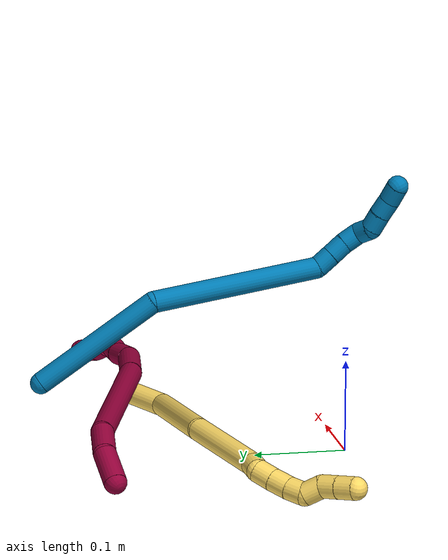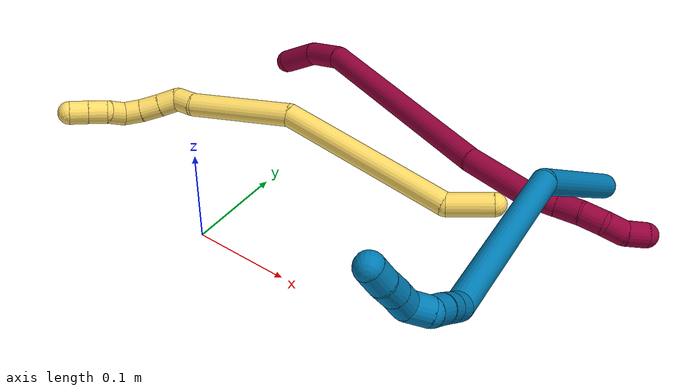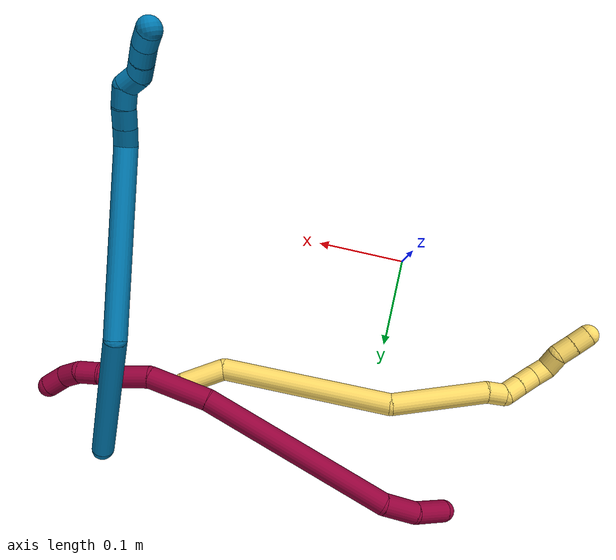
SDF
<sdf version="1.7">
 <world name="default">
  <model name="5">
   <static>0</static>
   <link name="5">
    <collision name="collision-cylinder-e_1_1_4">
     <pose>-0.010217 -0.020961 0.008322 1.19285 -0.425385 -0.291155</pose>
     <geometry><cylinder><radius>0.0125</radius><length>0.049518</length></cylinder></geometry>
     <surface>
      <friction><ode><mu>1.16</mu><mu2>1.16</mu2><slip1>0</slip1><slip2>0</slip2></ode></friction>
      <contact><ode><kp>1e+06</kp><kd>1</kd><max_vel>0</max_vel><min_depth>0.001</min_depth></ode></contact>
     </surface>
    </collision>
    <visual name="visual-cylinder-e_1_1_4">
     <pose>-0.010217 -0.020961 0.008322 1.19285 -0.425385 -0.291155</pose>
     <geometry><cylinder><radius>0.0125</radius><length>0.049518</length></cylinder></geometry>
     <material><ambient>1 0.858824 0.4 1</ambient></material>
    </visual>
    <collision name="collision-cylinder-e_2_4_5">
     <pose>-0.092557 -0.083116 0.068204 0.674107 -0.829733 -0.306259</pose>
     <geometry><cylinder><radius>0.0125</radius><length>0.19552</length></cylinder></geometry>
     <surface>
      <friction><ode><mu>1.16</mu><mu2>1.16</mu2><slip1>0</slip1><slip2>0</slip2></ode></friction>
      <contact><ode><kp>1e+06</kp><kd>1</kd><max_vel>0</max_vel><min_depth>0.001</min_depth></ode></contact>
     </surface>
    </collision>
    <visual name="visual-cylinder-e_2_4_5">
     <pose>-0.092557 -0.083116 0.068204 0.674107 -0.829733 -0.306259</pose>
     <geometry><cylinder><radius>0.0125</radius><length>0.19552</length></cylinder></geometry>
     <material><ambient>1 0.858824 0.4 1</ambient></material>
    </visual>
    <collision name="collision-cylinder-e_3_5_6">
     <pose>-0.197782 -0.164748 0.138047 1.14616 -0.640872 -0.421958</pose>
     <geometry><cylinder><radius>0.0125</radius><length>0.110731</length></cylinder></geometry>
     <surface>
      <friction><ode><mu>1.16</mu><mu2>1.16</mu2><slip1>0</slip1><slip2>0</slip2></ode></friction>
      <contact><ode><kp>1e+06</kp><kd>1</kd><max_vel>0</max_vel><min_depth>0.001</min_depth></ode></contact>
     </surface>
    </collision>
    <visual name="visual-cylinder-e_3_5_6">
     <pose>-0.197782 -0.164748 0.138047 1.14616 -0.640872 -0.421958</pose>
     <geometry><cylinder><radius>0.0125</radius><length>0.110731</length></cylinder></geometry>
     <material><ambient>1 0.858824 0.4 1</ambient></material>
    </visual>
    <collision name="collision-cylinder-e_4_6_7">
     <pose>-0.238949 -0.210646 0.160128 0.963169 -0.881219 -0.483235</pose>
     <geometry><cylinder><radius>0.0125</radius><length>0.020904</length></cylinder></geometry>
     <surface>
      <friction><ode><mu>1.16</mu><mu2>1.16</mu2><slip1>0</slip1><slip2>0</slip2></ode></friction>
      <contact><ode><kp>1e+06</kp><kd>1</kd><max_vel>0</max_vel><min_depth>0.001</min_depth></ode></contact>
     </surface>
    </collision>
    <visual name="visual-cylinder-e_4_6_7">
     <pose>-0.238949 -0.210646 0.160128 0.963169 -0.881219 -0.483235</pose>
     <geometry><cylinder><radius>0.0125</radius><length>0.020904</length></cylinder></geometry>
     <material><ambient>1 0.858824 0.4 1</ambient></material>
    </visual>
    <collision name="collision-cylinder-e_5_7_8">
     <pose>-0.250194 -0.226002 0.164605 1.50205 -0.3103 -0.289966</pose>
     <geometry><cylinder><radius>0.0125</radius><length>0.020836</length></cylinder></geometry>
     <surface>
      <friction><ode><mu>1.16</mu><mu2>1.16</mu2><slip1>0</slip1><slip2>0</slip2></ode></friction>
      <contact><ode><kp>1e+06</kp><kd>1</kd><max_vel>0</max_vel><min_depth>0.001</min_depth></ode></contact>
     </surface>
    </collision>
    <visual name="visual-cylinder-e_5_7_8">
     <pose>-0.250194 -0.226002 0.164605 1.50205 -0.3103 -0.289966</pose>
     <geometry><cylinder><radius>0.0125</radius><length>0.020836</length></cylinder></geometry>
     <material><ambient>1 0.858824 0.4 1</ambient></material>
    </visual>
    <collision name="collision-cylinder-e_6_8_9">
     <pose>-0.256563 -0.24604 0.166531 1.44873 -0.302474 -0.268078</pose>
     <geometry><cylinder><radius>0.0125</radius><length>0.021406</length></cylinder></geometry>
     <surface>
      <friction><ode><mu>1.16</mu><mu2>1.16</mu2><slip1>0</slip1><slip2>0</slip2></ode></friction>
      <contact><ode><kp>1e+06</kp><kd>1</kd><max_vel>0</max_vel><min_depth>0.001</min_depth></ode></contact>
     </surface>
    </collision>
    <visual name="visual-cylinder-e_6_8_9">
     <pose>-0.256563 -0.24604 0.166531 1.44873 -0.302474 -0.268078</pose>
     <geometry><cylinder><radius>0.0125</radius><length>0.021406</length></cylinder></geometry>
     <material><ambient>1 0.858824 0.4 1</ambient></material>
    </visual>
    <collision name="collision-cylinder-e_7_9_10">
     <pose>-0.262568 -0.265508 0.170104 1.32615 -0.285073 -0.223243</pose>
     <geometry><cylinder><radius>0.0125</radius><length>0.020036</length></cylinder></geometry>
     <surface>
      <friction><ode><mu>1.16</mu><mu2>1.16</mu2><slip1>0</slip1><slip2>0</slip2></ode></friction>
      <contact><ode><kp>1e+06</kp><kd>1</kd><max_vel>0</max_vel><min_depth>0.001</min_depth></ode></contact>
     </surface>
    </collision>
    <visual name="visual-cylinder-e_7_9_10">
     <pose>-0.262568 -0.265508 0.170104 1.32615 -0.285073 -0.223243</pose>
     <geometry><cylinder><radius>0.0125</radius><length>0.020036</length></cylinder></geometry>
     <material><ambient>1 0.858824 0.4 1</ambient></material>
    </visual>
    <collision name="collision-cylinder-e_8_10_11">
     <pose>-0.262238 -0.282016 0.179101 0.822341 0.310768 0.136391</pose>
     <geometry><cylinder><radius>0.0125</radius><length>0.020585</length></cylinder></geometry>
     <surface>
      <friction><ode><mu>1.16</mu><mu2>1.16</mu2><slip1>0</slip1><slip2>0</slip2></ode></friction>
      <contact><ode><kp>1e+06</kp><kd>1</kd><max_vel>0</max_vel><min_depth>0.001</min_depth></ode></contact>
     </surface>
    </collision>
    <visual name="visual-cylinder-e_8_10_11">
     <pose>-0.262238 -0.282016 0.179101 0.822341 0.310768 0.136391</pose>
     <geometry><cylinder><radius>0.0125</radius><length>0.020585</length></cylinder></geometry>
     <material><ambient>1 0.858824 0.4 1</ambient></material>
    </visual>
    <collision name="collision-cylinder-e_9_11_12">
     <pose>-0.260528 -0.29815 0.190306 1.10179 -0.14219 -0.087445</pose>
     <geometry><cylinder><radius>0.0125</radius><length>0.02028</length></cylinder></geometry>
     <surface>
      <friction><ode><mu>1.16</mu><mu2>1.16</mu2><slip1>0</slip1><slip2>0</slip2></ode></friction>
      <contact><ode><kp>1e+06</kp><kd>1</kd><max_vel>0</max_vel><min_depth>0.001</min_depth></ode></contact>
     </surface>
    </collision>
    <visual name="visual-cylinder-e_9_11_12">
     <pose>-0.260528 -0.29815 0.190306 1.10179 -0.14219 -0.087445</pose>
     <geometry><cylinder><radius>0.0125</radius><length>0.02028</length></cylinder></geometry>
     <material><ambient>1 0.858824 0.4 1</ambient></material>
    </visual>
    <collision name="collision-cylinder-e_10_12_2">
     <pose>-0.263209 -0.316081 0.199285 1.11139 -0.12355 -0.076781</pose>
     <geometry><cylinder><radius>0.0125</radius><length>0.020185</length></cylinder></geometry>
     <surface>
      <friction><ode><mu>1.16</mu><mu2>1.16</mu2><slip1>0</slip1><slip2>0</slip2></ode></friction>
      <contact><ode><kp>1e+06</kp><kd>1</kd><max_vel>0</max_vel><min_depth>0.001</min_depth></ode></contact>
     </surface>
    </collision>
    <visual name="visual-cylinder-e_10_12_2">
     <pose>-0.263209 -0.316081 0.199285 1.11139 -0.12355 -0.076781</pose>
     <geometry><cylinder><radius>0.0125</radius><length>0.020185</length></cylinder></geometry>
     <material><ambient>1 0.858824 0.4 1</ambient></material>
    </visual>
    <collision name="collision-sphere-2">
     <pose>-0.264452 -0.325058 0.203726 0 -0 0</pose>
     <geometry><sphere><radius>0.0125</radius></sphere></geometry>
     <surface>
      <friction><ode><mu>1.16</mu><mu2>1.16</mu2><slip1>0</slip1><slip2>0</slip2></ode></friction>
      <contact><ode><kp>1e+06</kp><kd>1</kd><max_vel>0</max_vel><min_depth>0.001</min_depth></ode></contact>
     </surface>
    </collision>
    <visual name="visual-sphere-2">
     <pose>-0.264452 -0.325058 0.203726 0 -0 0</pose>
     <geometry><sphere><radius>0.0125</radius></sphere></geometry>
     <material><ambient>1 0.858824 0.4 1</ambient></material>
    </visual>
    <collision name="collision-sphere-12">
     <pose>-0.261965 -0.307104 0.194843 0 -0 0</pose>
     <geometry><sphere><radius>0.0125</radius></sphere></geometry>
     <surface>
      <friction><ode><mu>1.16</mu><mu2>1.16</mu2><slip1>0</slip1><slip2>0</slip2></ode></friction>
      <contact><ode><kp>1e+06</kp><kd>1</kd><max_vel>0</max_vel><min_depth>0.001</min_depth></ode></contact>
     </surface>
    </collision>
    <visual name="visual-sphere-12">
     <pose>-0.261965 -0.307104 0.194843 0 -0 0</pose>
     <geometry><sphere><radius>0.0125</radius></sphere></geometry>
     <material><ambient>1 0.858824 0.4 1</ambient></material>
    </visual>
    <collision name="collision-sphere-11">
     <pose>-0.259091 -0.289196 0.185769 0 -0 0</pose>
     <geometry><sphere><radius>0.0125</radius></sphere></geometry>
     <surface>
      <friction><ode><mu>1.16</mu><mu2>1.16</mu2><slip1>0</slip1><slip2>0</slip2></ode></friction>
      <contact><ode><kp>1e+06</kp><kd>1</kd><max_vel>0</max_vel><min_depth>0.001</min_depth></ode></contact>
     </surface>
    </collision>
    <visual name="visual-sphere-11">
     <pose>-0.259091 -0.289196 0.185769 0 -0 0</pose>
     <geometry><sphere><radius>0.0125</radius></sphere></geometry>
     <material><ambient>1 0.858824 0.4 1</ambient></material>
    </visual>
    <collision name="collision-sphere-10">
     <pose>-0.265386 -0.274835 0.172432 0 -0 0</pose>
     <geometry><sphere><radius>0.0125</radius></sphere></geometry>
     <surface>
      <friction><ode><mu>1.16</mu><mu2>1.16</mu2><slip1>0</slip1><slip2>0</slip2></ode></friction>
      <contact><ode><kp>1e+06</kp><kd>1</kd><max_vel>0</max_vel><min_depth>0.001</min_depth></ode></contact>
     </surface>
    </collision>
    <visual name="visual-sphere-10">
     <pose>-0.265386 -0.274835 0.172432 0 -0 0</pose>
     <geometry><sphere><radius>0.0125</radius></sphere></geometry>
     <material><ambient>1 0.858824 0.4 1</ambient></material>
    </visual>
    <collision name="collision-sphere-9">
     <pose>-0.259751 -0.256181 0.167775 0 -0 0</pose>
     <geometry><sphere><radius>0.0125</radius></sphere></geometry>
     <surface>
      <friction><ode><mu>1.16</mu><mu2>1.16</mu2><slip1>0</slip1><slip2>0</slip2></ode></friction>
      <contact><ode><kp>1e+06</kp><kd>1</kd><max_vel>0</max_vel><min_depth>0.001</min_depth></ode></contact>
     </surface>
    </collision>
    <visual name="visual-sphere-9">
     <pose>-0.259751 -0.256181 0.167775 0 -0 0</pose>
     <geometry><sphere><radius>0.0125</radius></sphere></geometry>
     <material><ambient>1 0.858824 0.4 1</ambient></material>
    </visual>
    <collision name="collision-sphere-4">
     <pose>-0.020435 -0.041922 0.016644 0 -0 0</pose>
     <geometry><sphere><radius>0.0125</radius></sphere></geometry>
     <surface>
      <friction><ode><mu>1.16</mu><mu2>1.16</mu2><slip1>0</slip1><slip2>0</slip2></ode></friction>
      <contact><ode><kp>1e+06</kp><kd>1</kd><max_vel>0</max_vel><min_depth>0.001</min_depth></ode></contact>
     </surface>
    </collision>
    <visual name="visual-sphere-4">
     <pose>-0.020435 -0.041922 0.016644 0 -0 0</pose>
     <geometry><sphere><radius>0.0125</radius></sphere></geometry>
     <material><ambient>1 0.858824 0.4 1</ambient></material>
    </visual>
    <collision name="collision-sphere-1">
     <geometry><sphere><radius>0.0125</radius></sphere></geometry>
     <surface>
      <friction><ode><mu>1.16</mu><mu2>1.16</mu2><slip1>0</slip1><slip2>0</slip2></ode></friction>
      <contact><ode><kp>1e+06</kp><kd>1</kd><max_vel>0</max_vel><min_depth>0.001</min_depth></ode></contact>
     </surface>
    </collision>
    <visual name="visual-sphere-1">
     <geometry><sphere><radius>0.0125</radius></sphere></geometry>
     <material><ambient>1 0.858824 0.4 1</ambient></material>
    </visual>
    <collision name="collision-sphere-8">
     <pose>-0.253375 -0.235899 0.165287 0 -0 0</pose>
     <geometry><sphere><radius>0.0125</radius></sphere></geometry>
     <surface>
      <friction><ode><mu>1.16</mu><mu2>1.16</mu2><slip1>0</slip1><slip2>0</slip2></ode></friction>
      <contact><ode><kp>1e+06</kp><kd>1</kd><max_vel>0</max_vel><min_depth>0.001</min_depth></ode></contact>
     </surface>
    </collision>
    <visual name="visual-sphere-8">
     <pose>-0.253375 -0.235899 0.165287 0 -0 0</pose>
     <geometry><sphere><radius>0.0125</radius></sphere></geometry>
     <material><ambient>1 0.858824 0.4 1</ambient></material>
    </visual>
    <collision name="collision-sphere-5">
     <pose>-0.164679 -0.12431 0.119763 0 -0 0</pose>
     <geometry><sphere><radius>0.0125</radius></sphere></geometry>
     <surface>
      <friction><ode><mu>1.16</mu><mu2>1.16</mu2><slip1>0</slip1><slip2>0</slip2></ode></friction>
      <contact><ode><kp>1e+06</kp><kd>1</kd><max_vel>0</max_vel><min_depth>0.001</min_depth></ode></contact>
     </surface>
    </collision>
    <visual name="visual-sphere-5">
     <pose>-0.164679 -0.12431 0.119763 0 -0 0</pose>
     <geometry><sphere><radius>0.0125</radius></sphere></geometry>
     <material><ambient>1 0.858824 0.4 1</ambient></material>
    </visual>
    <collision name="collision-sphere-6">
     <pose>-0.230885 -0.205186 0.156331 0 -0 0</pose>
     <geometry><sphere><radius>0.0125</radius></sphere></geometry>
     <surface>
      <friction><ode><mu>1.16</mu><mu2>1.16</mu2><slip1>0</slip1><slip2>0</slip2></ode></friction>
      <contact><ode><kp>1e+06</kp><kd>1</kd><max_vel>0</max_vel><min_depth>0.001</min_depth></ode></contact>
     </surface>
    </collision>
    <visual name="visual-sphere-6">
     <pose>-0.230885 -0.205186 0.156331 0 -0 0</pose>
     <geometry><sphere><radius>0.0125</radius></sphere></geometry>
     <material><ambient>1 0.858824 0.4 1</ambient></material>
    </visual>
    <collision name="collision-sphere-7">
     <pose>-0.247013 -0.216105 0.163924 0 -0 0</pose>
     <geometry><sphere><radius>0.0125</radius></sphere></geometry>
     <surface>
      <friction><ode><mu>1.16</mu><mu2>1.16</mu2><slip1>0</slip1><slip2>0</slip2></ode></friction>
      <contact><ode><kp>1e+06</kp><kd>1</kd><max_vel>0</max_vel><min_depth>0.001</min_depth></ode></contact>
     </surface>
    </collision>
    <visual name="visual-sphere-7">
     <pose>-0.247013 -0.216105 0.163924 0 -0 0</pose>
     <geometry><sphere><radius>0.0125</radius></sphere></geometry>
     <material><ambient>1 0.858824 0.4 1</ambient></material>
    </visual>
    <inertial>
     <pose>-0.154917 -0.146924 0.108704 0 -0 0</pose>
     <mass>0.5</mass>
     <inertia>
      <ixx>0.000319</ixx>
      <ixy>0</ixy>
      <ixz>0</ixz>
      <iyy>0.000441</iyy>
      <iyz>0</iyz>
      <izz>0.000929</izz>
     </inertia>
    </inertial>
   </link>
   <pose>0.216258 0.195616 0.0147 0.311846 -0.300495 -0.581023</pose>
  </model>
  <model name="8">
   <static>0</static>
   <link name="8">
    <collision name="collision-cylinder-e_1_1_4">
     <pose>0.003456 0.004161 -0.019954 -2.93603 0.167948 -1.36891</pose>
     <geometry><cylinder><radius>0.0125</radius><length>0.041347</length></cylinder></geometry>
     <surface>
      <friction><ode><mu>1.16</mu><mu2>1.16</mu2><slip1>0</slip1><slip2>0</slip2></ode></friction>
      <contact><ode><kp>1e+06</kp><kd>1</kd><max_vel>0</max_vel><min_depth>0.001</min_depth></ode></contact>
     </surface>
    </collision>
    <visual name="visual-cylinder-e_1_1_4">
     <pose>0.003456 0.004161 -0.019954 -2.93603 0.167948 -1.36891</pose>
     <geometry><cylinder><radius>0.0125</radius><length>0.041347</length></cylinder></geometry>
     <material><ambient>0.584314 0 0.227451 1</ambient></material>
    </visual>
    <collision name="collision-cylinder-e_2_4_5">
     <pose>0.016218 0.009631 -0.057481 -3.06717 0.485863 -2.8434</pose>
     <geometry><cylinder><radius>0.0125</radius><length>0.039857</length></cylinder></geometry>
     <surface>
      <friction><ode><mu>1.16</mu><mu2>1.16</mu2><slip1>0</slip1><slip2>0</slip2></ode></friction>
      <contact><ode><kp>1e+06</kp><kd>1</kd><max_vel>0</max_vel><min_depth>0.001</min_depth></ode></contact>
     </surface>
    </collision>
    <visual name="visual-cylinder-e_2_4_5">
     <pose>0.016218 0.009631 -0.057481 -3.06717 0.485863 -2.8434</pose>
     <geometry><cylinder><radius>0.0125</radius><length>0.039857</length></cylinder></geometry>
     <material><ambient>0.584314 0 0.227451 1</ambient></material>
    </visual>
    <collision name="collision-cylinder-e_3_5_6">
     <pose>0.105867 -0.001177 -0.152402 2.98617 0.798336 2.77651</pose>
     <geometry><cylinder><radius>0.0125</radius><length>0.224362</length></cylinder></geometry>
     <surface>
      <friction><ode><mu>1.16</mu><mu2>1.16</mu2><slip1>0</slip1><slip2>0</slip2></ode></friction>
      <contact><ode><kp>1e+06</kp><kd>1</kd><max_vel>0</max_vel><min_depth>0.001</min_depth></ode></contact>
     </surface>
    </collision>
    <visual name="visual-cylinder-e_3_5_6">
     <pose>0.105867 -0.001177 -0.152402 2.98617 0.798336 2.77651</pose>
     <geometry><cylinder><radius>0.0125</radius><length>0.224362</length></cylinder></geometry>
     <material><ambient>0.584314 0 0.227451 1</ambient></material>
    </visual>
    <collision name="collision-cylinder-e_4_6_7">
     <pose>0.207432 -0.0207 -0.256303 2.86968 0.656067 2.37719</pose>
     <geometry><cylinder><radius>0.0125</radius><length>0.069577</length></cylinder></geometry>
     <surface>
      <friction><ode><mu>1.16</mu><mu2>1.16</mu2><slip1>0</slip1><slip2>0</slip2></ode></friction>
      <contact><ode><kp>1e+06</kp><kd>1</kd><max_vel>0</max_vel><min_depth>0.001</min_depth></ode></contact>
     </surface>
    </collision>
    <visual name="visual-cylinder-e_4_6_7">
     <pose>0.207432 -0.0207 -0.256303 2.86968 0.656067 2.37719</pose>
     <geometry><cylinder><radius>0.0125</radius><length>0.069577</length></cylinder></geometry>
     <material><ambient>0.584314 0 0.227451 1</ambient></material>
    </visual>
    <collision name="collision-cylinder-e_5_7_8">
     <pose>0.23373 -0.034756 -0.296394 2.68483 0.324667 1.22761</pose>
     <geometry><cylinder><radius>0.0125</radius><length>0.031832</length></cylinder></geometry>
     <surface>
      <friction><ode><mu>1.16</mu><mu2>1.16</mu2><slip1>0</slip1><slip2>0</slip2></ode></friction>
      <contact><ode><kp>1e+06</kp><kd>1</kd><max_vel>0</max_vel><min_depth>0.001</min_depth></ode></contact>
     </surface>
    </collision>
    <visual name="visual-cylinder-e_5_7_8">
     <pose>0.23373 -0.034756 -0.296394 2.68483 0.324667 1.22761</pose>
     <geometry><cylinder><radius>0.0125</radius><length>0.031832</length></cylinder></geometry>
     <material><ambient>0.584314 0 0.227451 1</ambient></material>
    </visual>
    <collision name="collision-cylinder-e_6_8_9">
     <pose>0.243931 -0.044619 -0.320865 2.85601 0.422585 1.96059</pose>
     <geometry><cylinder><radius>0.0125</radius><length>0.024988</length></cylinder></geometry>
     <surface>
      <friction><ode><mu>1.16</mu><mu2>1.16</mu2><slip1>0</slip1><slip2>0</slip2></ode></friction>
      <contact><ode><kp>1e+06</kp><kd>1</kd><max_vel>0</max_vel><min_depth>0.001</min_depth></ode></contact>
     </surface>
    </collision>
    <visual name="visual-cylinder-e_6_8_9">
     <pose>0.243931 -0.044619 -0.320865 2.85601 0.422585 1.96059</pose>
     <geometry><cylinder><radius>0.0125</radius><length>0.024988</length></cylinder></geometry>
     <material><ambient>0.584314 0 0.227451 1</ambient></material>
    </visual>
    <collision name="collision-cylinder-e_7_9_10">
     <pose>0.25352 -0.052893 -0.341119 2.64392 0.398448 1.34284</pose>
     <geometry><cylinder><radius>0.0125</radius><length>0.023017</length></cylinder></geometry>
     <surface>
      <friction><ode><mu>1.16</mu><mu2>1.16</mu2><slip1>0</slip1><slip2>0</slip2></ode></friction>
      <contact><ode><kp>1e+06</kp><kd>1</kd><max_vel>0</max_vel><min_depth>0.001</min_depth></ode></contact>
     </surface>
    </collision>
    <visual name="visual-cylinder-e_7_9_10">
     <pose>0.25352 -0.052893 -0.341119 2.64392 0.398448 1.34284</pose>
     <geometry><cylinder><radius>0.0125</radius><length>0.023017</length></cylinder></geometry>
     <material><ambient>0.584314 0 0.227451 1</ambient></material>
    </visual>
    <collision name="collision-cylinder-e_8_10_11">
     <pose>0.259816 -0.066416 -0.35762 2.27465 0.163472 0.35036</pose>
     <geometry><cylinder><radius>0.0125</radius><length>0.022491</length></cylinder></geometry>
     <surface>
      <friction><ode><mu>1.16</mu><mu2>1.16</mu2><slip1>0</slip1><slip2>0</slip2></ode></friction>
      <contact><ode><kp>1e+06</kp><kd>1</kd><max_vel>0</max_vel><min_depth>0.001</min_depth></ode></contact>
     </surface>
    </collision>
    <visual name="visual-cylinder-e_8_10_11">
     <pose>0.259816 -0.066416 -0.35762 2.27465 0.163472 0.35036</pose>
     <geometry><cylinder><radius>0.0125</radius><length>0.022491</length></cylinder></geometry>
     <material><ambient>0.584314 0 0.227451 1</ambient></material>
    </visual>
    <collision name="collision-cylinder-e_9_11_2">
     <pose>0.259999 -0.082076 -0.373304 2.43887 -0.14668 -0.39562</pose>
     <geometry><cylinder><radius>0.0125</radius><length>0.022529</length></cylinder></geometry>
     <surface>
      <friction><ode><mu>1.16</mu><mu2>1.16</mu2><slip1>0</slip1><slip2>0</slip2></ode></friction>
      <contact><ode><kp>1e+06</kp><kd>1</kd><max_vel>0</max_vel><min_depth>0.001</min_depth></ode></contact>
     </surface>
    </collision>
    <visual name="visual-cylinder-e_9_11_2">
     <pose>0.259999 -0.082076 -0.373304 2.43887 -0.14668 -0.39562</pose>
     <geometry><cylinder><radius>0.0125</radius><length>0.022529</length></cylinder></geometry>
     <material><ambient>0.584314 0 0.227451 1</ambient></material>
    </visual>
    <collision name="collision-sphere-2">
     <pose>0.258353 -0.089278 -0.381808 0 -0 0</pose>
     <geometry><sphere><radius>0.0125</radius></sphere></geometry>
     <surface>
      <friction><ode><mu>1.16</mu><mu2>1.16</mu2><slip1>0</slip1><slip2>0</slip2></ode></friction>
      <contact><ode><kp>1e+06</kp><kd>1</kd><max_vel>0</max_vel><min_depth>0.001</min_depth></ode></contact>
     </surface>
    </collision>
    <visual name="visual-sphere-2">
     <pose>0.258353 -0.089278 -0.381808 0 -0 0</pose>
     <geometry><sphere><radius>0.0125</radius></sphere></geometry>
     <material><ambient>0.584314 0 0.227451 1</ambient></material>
    </visual>
    <collision name="collision-sphere-11">
     <pose>0.261646 -0.074875 -0.364801 0 -0 0</pose>
     <geometry><sphere><radius>0.0125</radius></sphere></geometry>
     <surface>
      <friction><ode><mu>1.16</mu><mu2>1.16</mu2><slip1>0</slip1><slip2>0</slip2></ode></friction>
      <contact><ode><kp>1e+06</kp><kd>1</kd><max_vel>0</max_vel><min_depth>0.001</min_depth></ode></contact>
     </surface>
    </collision>
    <visual name="visual-sphere-11">
     <pose>0.261646 -0.074875 -0.364801 0 -0 0</pose>
     <geometry><sphere><radius>0.0125</radius></sphere></geometry>
     <material><ambient>0.584314 0 0.227451 1</ambient></material>
    </visual>
    <collision name="collision-sphere-10">
     <pose>0.257985 -0.057957 -0.350439 0 -0 0</pose>
     <geometry><sphere><radius>0.0125</radius></sphere></geometry>
     <surface>
      <friction><ode><mu>1.16</mu><mu2>1.16</mu2><slip1>0</slip1><slip2>0</slip2></ode></friction>
      <contact><ode><kp>1e+06</kp><kd>1</kd><max_vel>0</max_vel><min_depth>0.001</min_depth></ode></contact>
     </surface>
    </collision>
    <visual name="visual-sphere-10">
     <pose>0.257985 -0.057957 -0.350439 0 -0 0</pose>
     <geometry><sphere><radius>0.0125</radius></sphere></geometry>
     <material><ambient>0.584314 0 0.227451 1</ambient></material>
    </visual>
    <collision name="collision-sphere-9">
     <pose>0.249055 -0.04783 -0.331799 0 -0 0</pose>
     <geometry><sphere><radius>0.0125</radius></sphere></geometry>
     <surface>
      <friction><ode><mu>1.16</mu><mu2>1.16</mu2><slip1>0</slip1><slip2>0</slip2></ode></friction>
      <contact><ode><kp>1e+06</kp><kd>1</kd><max_vel>0</max_vel><min_depth>0.001</min_depth></ode></contact>
     </surface>
    </collision>
    <visual name="visual-sphere-9">
     <pose>0.249055 -0.04783 -0.331799 0 -0 0</pose>
     <geometry><sphere><radius>0.0125</radius></sphere></geometry>
     <material><ambient>0.584314 0 0.227451 1</ambient></material>
    </visual>
    <collision name="collision-sphere-4">
     <pose>0.006912 0.008321 -0.039907 0 -0 0</pose>
     <geometry><sphere><radius>0.0125</radius></sphere></geometry>
     <surface>
      <friction><ode><mu>1.16</mu><mu2>1.16</mu2><slip1>0</slip1><slip2>0</slip2></ode></friction>
      <contact><ode><kp>1e+06</kp><kd>1</kd><max_vel>0</max_vel><min_depth>0.001</min_depth></ode></contact>
     </surface>
    </collision>
    <visual name="visual-sphere-4">
     <pose>0.006912 0.008321 -0.039907 0 -0 0</pose>
     <geometry><sphere><radius>0.0125</radius></sphere></geometry>
     <material><ambient>0.584314 0 0.227451 1</ambient></material>
    </visual>
    <collision name="collision-sphere-1">
     <geometry><sphere><radius>0.0125</radius></sphere></geometry>
     <surface>
      <friction><ode><mu>1.16</mu><mu2>1.16</mu2><slip1>0</slip1><slip2>0</slip2></ode></friction>
      <contact><ode><kp>1e+06</kp><kd>1</kd><max_vel>0</max_vel><min_depth>0.001</min_depth></ode></contact>
     </surface>
    </collision>
    <visual name="visual-sphere-1">
     <geometry><sphere><radius>0.0125</radius></sphere></geometry>
     <material><ambient>0.584314 0 0.227451 1</ambient></material>
    </visual>
    <collision name="collision-sphere-8">
     <pose>0.238807 -0.041409 -0.309932 0 -0 0</pose>
     <geometry><sphere><radius>0.0125</radius></sphere></geometry>
     <surface>
      <friction><ode><mu>1.16</mu><mu2>1.16</mu2><slip1>0</slip1><slip2>0</slip2></ode></friction>
      <contact><ode><kp>1e+06</kp><kd>1</kd><max_vel>0</max_vel><min_depth>0.001</min_depth></ode></contact>
     </surface>
    </collision>
    <visual name="visual-sphere-8">
     <pose>0.238807 -0.041409 -0.309932 0 -0 0</pose>
     <geometry><sphere><radius>0.0125</radius></sphere></geometry>
     <material><ambient>0.584314 0 0.227451 1</ambient></material>
    </visual>
    <collision name="collision-sphere-5">
     <pose>0.025524 0.010941 -0.075054 0 -0 0</pose>
     <geometry><sphere><radius>0.0125</radius></sphere></geometry>
     <surface>
      <friction><ode><mu>1.16</mu><mu2>1.16</mu2><slip1>0</slip1><slip2>0</slip2></ode></friction>
      <contact><ode><kp>1e+06</kp><kd>1</kd><max_vel>0</max_vel><min_depth>0.001</min_depth></ode></contact>
     </surface>
    </collision>
    <visual name="visual-sphere-5">
     <pose>0.025524 0.010941 -0.075054 0 -0 0</pose>
     <geometry><sphere><radius>0.0125</radius></sphere></geometry>
     <material><ambient>0.584314 0 0.227451 1</ambient></material>
    </visual>
    <collision name="collision-sphere-6">
     <pose>0.186211 -0.013296 -0.229749 0 -0 0</pose>
     <geometry><sphere><radius>0.0125</radius></sphere></geometry>
     <surface>
      <friction><ode><mu>1.16</mu><mu2>1.16</mu2><slip1>0</slip1><slip2>0</slip2></ode></friction>
      <contact><ode><kp>1e+06</kp><kd>1</kd><max_vel>0</max_vel><min_depth>0.001</min_depth></ode></contact>
     </surface>
    </collision>
    <visual name="visual-sphere-6">
     <pose>0.186211 -0.013296 -0.229749 0 -0 0</pose>
     <geometry><sphere><radius>0.0125</radius></sphere></geometry>
     <material><ambient>0.584314 0 0.227451 1</ambient></material>
    </visual>
    <collision name="collision-sphere-7">
     <pose>0.228653 -0.028104 -0.282856 0 -0 0</pose>
     <geometry><sphere><radius>0.0125</radius></sphere></geometry>
     <surface>
      <friction><ode><mu>1.16</mu><mu2>1.16</mu2><slip1>0</slip1><slip2>0</slip2></ode></friction>
      <contact><ode><kp>1e+06</kp><kd>1</kd><max_vel>0</max_vel><min_depth>0.001</min_depth></ode></contact>
     </surface>
    </collision>
    <visual name="visual-sphere-7">
     <pose>0.228653 -0.028104 -0.282856 0 -0 0</pose>
     <geometry><sphere><radius>0.0125</radius></sphere></geometry>
     <material><ambient>0.584314 0 0.227451 1</ambient></material>
    </visual>
    <inertial>
     <pose>0.140092 -0.01586 -0.193799 0 -0 0</pose>
     <mass>0.5</mass>
     <inertia>
      <ixx>-0.000365</ixx>
      <ixy>0</ixy>
      <ixz>0</ixz>
      <iyy>0.001187</iyy>
      <iyz>0</iyz>
      <izz>-0.000624</izz>
     </inertia>
    </inertial>
   </link>
   <pose>-0.106369 0.270406 0.011484 2.01246 0.250423 -1.04098</pose>
  </model>
  <model name="9">
   <static>0</static>
   <link name="9">
    <collision name="collision-cylinder-e_1_1_4">
     <pose>-0.024203 -0.032712 -0.067288 2.68908 -0.312861 -1.20138</pose>
     <geometry><cylinder><radius>0.0125</radius><length>0.15727</length></cylinder></geometry>
     <surface>
      <friction><ode><mu>1.16</mu><mu2>1.16</mu2><slip1>0</slip1><slip2>0</slip2></ode></friction>
      <contact><ode><kp>1e+06</kp><kd>1</kd><max_vel>0</max_vel><min_depth>0.001</min_depth></ode></contact>
     </surface>
    </collision>
    <visual name="visual-cylinder-e_1_1_4">
     <pose>-0.024203 -0.032712 -0.067288 2.68908 -0.312861 -1.20138</pose>
     <geometry><cylinder><radius>0.0125</radius><length>0.15727</length></cylinder></geometry>
     <material><ambient>0 0.490196 0.709804 1</ambient></material>
    </visual>
    <collision name="collision-cylinder-e_2_4_5">
     <pose>-0.078772 -0.054712 -0.229627 -3.02936 -0.307403 2.44587</pose>
     <geometry><cylinder><radius>0.0125</radius><length>0.200715</length></cylinder></geometry>
     <surface>
      <friction><ode><mu>1.16</mu><mu2>1.16</mu2><slip1>0</slip1><slip2>0</slip2></ode></friction>
      <contact><ode><kp>1e+06</kp><kd>1</kd><max_vel>0</max_vel><min_depth>0.001</min_depth></ode></contact>
     </surface>
    </collision>
    <visual name="visual-cylinder-e_2_4_5">
     <pose>-0.078772 -0.054712 -0.229627 -3.02936 -0.307403 2.44587</pose>
     <geometry><cylinder><radius>0.0125</radius><length>0.200715</length></cylinder></geometry>
     <material><ambient>0 0.490196 0.709804 1</ambient></material>
    </visual>
    <collision name="collision-cylinder-e_3_5_6">
     <pose>-0.110966 -0.048574 -0.333889 2.68056 -0.175847 -0.718603</pose>
     <geometry><cylinder><radius>0.0125</radius><length>0.020892</length></cylinder></geometry>
     <surface>
      <friction><ode><mu>1.16</mu><mu2>1.16</mu2><slip1>0</slip1><slip2>0</slip2></ode></friction>
      <contact><ode><kp>1e+06</kp><kd>1</kd><max_vel>0</max_vel><min_depth>0.001</min_depth></ode></contact>
     </surface>
    </collision>
    <visual name="visual-cylinder-e_3_5_6">
     <pose>-0.110966 -0.048574 -0.333889 2.68056 -0.175847 -0.718603</pose>
     <geometry><cylinder><radius>0.0125</radius><length>0.020892</length></cylinder></geometry>
     <material><ambient>0 0.490196 0.709804 1</ambient></material>
    </visual>
    <collision name="collision-cylinder-e_4_6_7">
     <pose>-0.114357 -0.057663 -0.352183 2.68045 -0.152957 -0.631043</pose>
     <geometry><cylinder><radius>0.0125</radius><length>0.020525</length></cylinder></geometry>
     <surface>
      <friction><ode><mu>1.16</mu><mu2>1.16</mu2><slip1>0</slip1><slip2>0</slip2></ode></friction>
      <contact><ode><kp>1e+06</kp><kd>1</kd><max_vel>0</max_vel><min_depth>0.001</min_depth></ode></contact>
     </surface>
    </collision>
    <visual name="visual-cylinder-e_4_6_7">
     <pose>-0.114357 -0.057663 -0.352183 2.68045 -0.152957 -0.631043</pose>
     <geometry><cylinder><radius>0.0125</radius><length>0.020525</length></cylinder></geometry>
     <material><ambient>0 0.490196 0.709804 1</ambient></material>
    </visual>
    <collision name="collision-cylinder-e_5_7_8">
     <pose>-0.118779 -0.065935 -0.370208 2.74359 -0.286572 -1.24198</pose>
     <geometry><cylinder><radius>0.0125</radius><length>0.020224</length></cylinder></geometry>
     <surface>
      <friction><ode><mu>1.16</mu><mu2>1.16</mu2><slip1>0</slip1><slip2>0</slip2></ode></friction>
      <contact><ode><kp>1e+06</kp><kd>1</kd><max_vel>0</max_vel><min_depth>0.001</min_depth></ode></contact>
     </surface>
    </collision>
    <visual name="visual-cylinder-e_5_7_8">
     <pose>-0.118779 -0.065935 -0.370208 2.74359 -0.286572 -1.24198</pose>
     <geometry><cylinder><radius>0.0125</radius><length>0.020224</length></cylinder></geometry>
     <material><ambient>0 0.490196 0.709804 1</ambient></material>
    </visual>
    <collision name="collision-cylinder-e_6_8_9">
     <pose>-0.129506 -0.074743 -0.382768 2.19273 -0.902601 -1.51292</pose>
     <geometry><cylinder><radius>0.0125</radius><length>0.02005</length></cylinder></geometry>
     <surface>
      <friction><ode><mu>1.16</mu><mu2>1.16</mu2><slip1>0</slip1><slip2>0</slip2></ode></friction>
      <contact><ode><kp>1e+06</kp><kd>1</kd><max_vel>0</max_vel><min_depth>0.001</min_depth></ode></contact>
     </surface>
    </collision>
    <visual name="visual-cylinder-e_6_8_9">
     <pose>-0.129506 -0.074743 -0.382768 2.19273 -0.902601 -1.51292</pose>
     <geometry><cylinder><radius>0.0125</radius><length>0.02005</length></cylinder></geometry>
     <material><ambient>0 0.490196 0.709804 1</ambient></material>
    </visual>
    <collision name="collision-cylinder-e_7_9_10">
     <pose>-0.139634 -0.087895 -0.391857 2.16452 -0.227039 -0.422597</pose>
     <geometry><cylinder><radius>0.0125</radius><length>0.020069</length></cylinder></geometry>
     <surface>
      <friction><ode><mu>1.16</mu><mu2>1.16</mu2><slip1>0</slip1><slip2>0</slip2></ode></friction>
      <contact><ode><kp>1e+06</kp><kd>1</kd><max_vel>0</max_vel><min_depth>0.001</min_depth></ode></contact>
     </surface>
    </collision>
    <visual name="visual-cylinder-e_7_9_10">
     <pose>-0.139634 -0.087895 -0.391857 2.16452 -0.227039 -0.422597</pose>
     <geometry><cylinder><radius>0.0125</radius><length>0.020069</length></cylinder></geometry>
     <material><ambient>0 0.490196 0.709804 1</ambient></material>
    </visual>
    <collision name="collision-cylinder-e_8_10_11">
     <pose>-0.144317 -0.103647 -0.40332 2.23549 -0.244463 -0.494355</pose>
     <geometry><cylinder><radius>0.0125</radius><length>0.020029</length></cylinder></geometry>
     <surface>
      <friction><ode><mu>1.16</mu><mu2>1.16</mu2><slip1>0</slip1><slip2>0</slip2></ode></friction>
      <contact><ode><kp>1e+06</kp><kd>1</kd><max_vel>0</max_vel><min_depth>0.001</min_depth></ode></contact>
     </surface>
    </collision>
    <visual name="visual-cylinder-e_8_10_11">
     <pose>-0.144317 -0.103647 -0.40332 2.23549 -0.244463 -0.494355</pose>
     <geometry><cylinder><radius>0.0125</radius><length>0.020029</length></cylinder></geometry>
     <material><ambient>0 0.490196 0.709804 1</ambient></material>
    </visual>
    <collision name="collision-cylinder-e_9_11_2">
     <pose>-0.149625 -0.119841 -0.413887 2.06222 -0.289249 -0.477023</pose>
     <geometry><cylinder><radius>0.0125</radius><length>0.020225</length></cylinder></geometry>
     <surface>
      <friction><ode><mu>1.16</mu><mu2>1.16</mu2><slip1>0</slip1><slip2>0</slip2></ode></friction>
      <contact><ode><kp>1e+06</kp><kd>1</kd><max_vel>0</max_vel><min_depth>0.001</min_depth></ode></contact>
     </surface>
    </collision>
    <visual name="visual-cylinder-e_9_11_2">
     <pose>-0.149625 -0.119841 -0.413887 2.06222 -0.289249 -0.477023</pose>
     <geometry><cylinder><radius>0.0125</radius><length>0.020225</length></cylinder></geometry>
     <material><ambient>0 0.490196 0.709804 1</ambient></material>
    </visual>
    <collision name="collision-sphere-2">
     <pose>-0.152509 -0.128386 -0.418461 0 -0 0</pose>
     <geometry><sphere><radius>0.0125</radius></sphere></geometry>
     <surface>
      <friction><ode><mu>1.16</mu><mu2>1.16</mu2><slip1>0</slip1><slip2>0</slip2></ode></friction>
      <contact><ode><kp>1e+06</kp><kd>1</kd><max_vel>0</max_vel><min_depth>0.001</min_depth></ode></contact>
     </surface>
    </collision>
    <visual name="visual-sphere-2">
     <pose>-0.152509 -0.128386 -0.418461 0 -0 0</pose>
     <geometry><sphere><radius>0.0125</radius></sphere></geometry>
     <material><ambient>0 0.490196 0.709804 1</ambient></material>
    </visual>
    <collision name="collision-sphere-11">
     <pose>-0.146741 -0.111295 -0.409313 0 -0 0</pose>
     <geometry><sphere><radius>0.0125</radius></sphere></geometry>
     <surface>
      <friction><ode><mu>1.16</mu><mu2>1.16</mu2><slip1>0</slip1><slip2>0</slip2></ode></friction>
      <contact><ode><kp>1e+06</kp><kd>1</kd><max_vel>0</max_vel><min_depth>0.001</min_depth></ode></contact>
     </surface>
    </collision>
    <visual name="visual-sphere-11">
     <pose>-0.146741 -0.111295 -0.409313 0 -0 0</pose>
     <geometry><sphere><radius>0.0125</radius></sphere></geometry>
     <material><ambient>0 0.490196 0.709804 1</ambient></material>
    </visual>
    <collision name="collision-sphere-10">
     <pose>-0.141893 -0.095999 -0.397326 0 -0 0</pose>
     <geometry><sphere><radius>0.0125</radius></sphere></geometry>
     <surface>
      <friction><ode><mu>1.16</mu><mu2>1.16</mu2><slip1>0</slip1><slip2>0</slip2></ode></friction>
      <contact><ode><kp>1e+06</kp><kd>1</kd><max_vel>0</max_vel><min_depth>0.001</min_depth></ode></contact>
     </surface>
    </collision>
    <visual name="visual-sphere-10">
     <pose>-0.141893 -0.095999 -0.397326 0 -0 0</pose>
     <geometry><sphere><radius>0.0125</radius></sphere></geometry>
     <material><ambient>0 0.490196 0.709804 1</ambient></material>
    </visual>
    <collision name="collision-sphere-9">
     <pose>-0.137375 -0.079791 -0.386387 0 -0 0</pose>
     <geometry><sphere><radius>0.0125</radius></sphere></geometry>
     <surface>
      <friction><ode><mu>1.16</mu><mu2>1.16</mu2><slip1>0</slip1><slip2>0</slip2></ode></friction>
      <contact><ode><kp>1e+06</kp><kd>1</kd><max_vel>0</max_vel><min_depth>0.001</min_depth></ode></contact>
     </surface>
    </collision>
    <visual name="visual-sphere-9">
     <pose>-0.137375 -0.079791 -0.386387 0 -0 0</pose>
     <geometry><sphere><radius>0.0125</radius></sphere></geometry>
     <material><ambient>0 0.490196 0.709804 1</ambient></material>
    </visual>
    <collision name="collision-sphere-4">
     <pose>-0.048405 -0.065425 -0.134575 0 -0 0</pose>
     <geometry><sphere><radius>0.0125</radius></sphere></geometry>
     <surface>
      <friction><ode><mu>1.16</mu><mu2>1.16</mu2><slip1>0</slip1><slip2>0</slip2></ode></friction>
      <contact><ode><kp>1e+06</kp><kd>1</kd><max_vel>0</max_vel><min_depth>0.001</min_depth></ode></contact>
     </surface>
    </collision>
    <visual name="visual-sphere-4">
     <pose>-0.048405 -0.065425 -0.134575 0 -0 0</pose>
     <geometry><sphere><radius>0.0125</radius></sphere></geometry>
     <material><ambient>0 0.490196 0.709804 1</ambient></material>
    </visual>
    <collision name="collision-sphere-1">
     <geometry><sphere><radius>0.0125</radius></sphere></geometry>
     <surface>
      <friction><ode><mu>1.16</mu><mu2>1.16</mu2><slip1>0</slip1><slip2>0</slip2></ode></friction>
      <contact><ode><kp>1e+06</kp><kd>1</kd><max_vel>0</max_vel><min_depth>0.001</min_depth></ode></contact>
     </surface>
    </collision>
    <visual name="visual-sphere-1">
     <geometry><sphere><radius>0.0125</radius></sphere></geometry>
     <material><ambient>0 0.490196 0.709804 1</ambient></material>
    </visual>
    <collision name="collision-sphere-8">
     <pose>-0.121637 -0.069695 -0.379149 0 -0 0</pose>
     <geometry><sphere><radius>0.0125</radius></sphere></geometry>
     <surface>
      <friction><ode><mu>1.16</mu><mu2>1.16</mu2><slip1>0</slip1><slip2>0</slip2></ode></friction>
      <contact><ode><kp>1e+06</kp><kd>1</kd><max_vel>0</max_vel><min_depth>0.001</min_depth></ode></contact>
     </surface>
    </collision>
    <visual name="visual-sphere-8">
     <pose>-0.121637 -0.069695 -0.379149 0 -0 0</pose>
     <geometry><sphere><radius>0.0125</radius></sphere></geometry>
     <material><ambient>0 0.490196 0.709804 1</ambient></material>
    </visual>
    <collision name="collision-sphere-5">
     <pose>-0.109138 -0.043998 -0.324678 0 -0 0</pose>
     <geometry><sphere><radius>0.0125</radius></sphere></geometry>
     <surface>
      <friction><ode><mu>1.16</mu><mu2>1.16</mu2><slip1>0</slip1><slip2>0</slip2></ode></friction>
      <contact><ode><kp>1e+06</kp><kd>1</kd><max_vel>0</max_vel><min_depth>0.001</min_depth></ode></contact>
     </surface>
    </collision>
    <visual name="visual-sphere-5">
     <pose>-0.109138 -0.043998 -0.324678 0 -0 0</pose>
     <geometry><sphere><radius>0.0125</radius></sphere></geometry>
     <material><ambient>0 0.490196 0.709804 1</ambient></material>
    </visual>
    <collision name="collision-sphere-6">
     <pose>-0.112793 -0.05315 -0.3431 0 -0 0</pose>
     <geometry><sphere><radius>0.0125</radius></sphere></geometry>
     <surface>
      <friction><ode><mu>1.16</mu><mu2>1.16</mu2><slip1>0</slip1><slip2>0</slip2></ode></friction>
      <contact><ode><kp>1e+06</kp><kd>1</kd><max_vel>0</max_vel><min_depth>0.001</min_depth></ode></contact>
     </surface>
    </collision>
    <visual name="visual-sphere-6">
     <pose>-0.112793 -0.05315 -0.3431 0 -0 0</pose>
     <geometry><sphere><radius>0.0125</radius></sphere></geometry>
     <material><ambient>0 0.490196 0.709804 1</ambient></material>
    </visual>
    <collision name="collision-sphere-7">
     <pose>-0.11592 -0.062176 -0.361266 0 -0 0</pose>
     <geometry><sphere><radius>0.0125</radius></sphere></geometry>
     <surface>
      <friction><ode><mu>1.16</mu><mu2>1.16</mu2><slip1>0</slip1><slip2>0</slip2></ode></friction>
      <contact><ode><kp>1e+06</kp><kd>1</kd><max_vel>0</max_vel><min_depth>0.001</min_depth></ode></contact>
     </surface>
    </collision>
    <visual name="visual-sphere-7">
     <pose>-0.11592 -0.062176 -0.361266 0 -0 0</pose>
     <geometry><sphere><radius>0.0125</radius></sphere></geometry>
     <material><ambient>0 0.490196 0.709804 1</ambient></material>
    </visual>
    <inertial>
     <pose>-0.076001 -0.054841 -0.220702 0 -0 0</pose>
     <mass>0.5</mass>
     <inertia>
      <ixx>-0.000273</ixx>
      <ixy>0</ixy>
      <ixz>0</ixz>
      <iyy>0.000573</iyy>
      <iyz>0</iyz>
      <izz>0.000349</izz>
     </inertia>
    </inertial>
   </link>
   <pose>0.28914 0.288722 0.01147 -1.87523 -0.205711 0.497763</pose>
  </model>
 </world>
</sdf>
